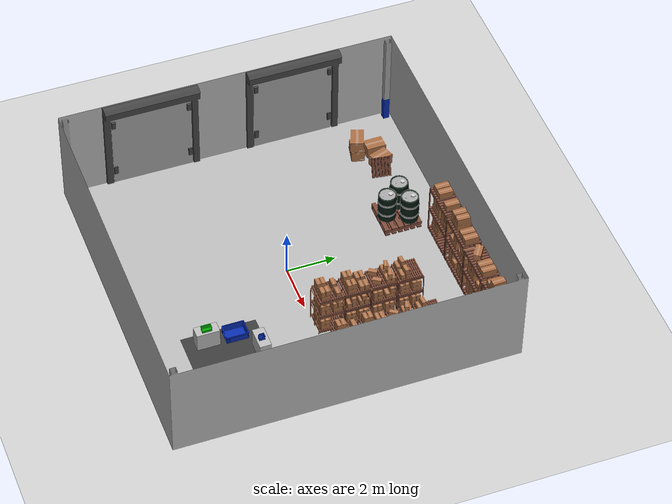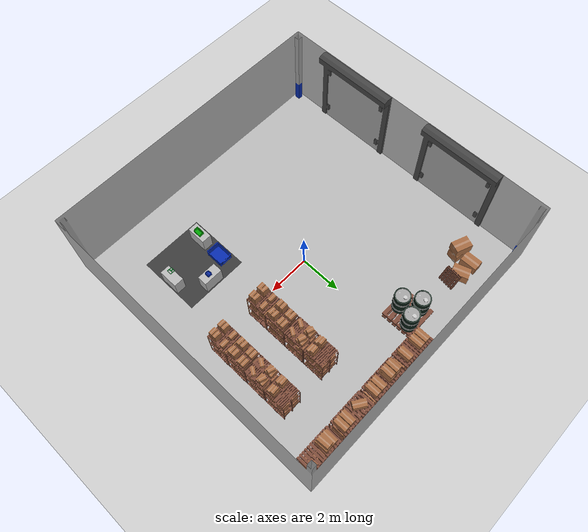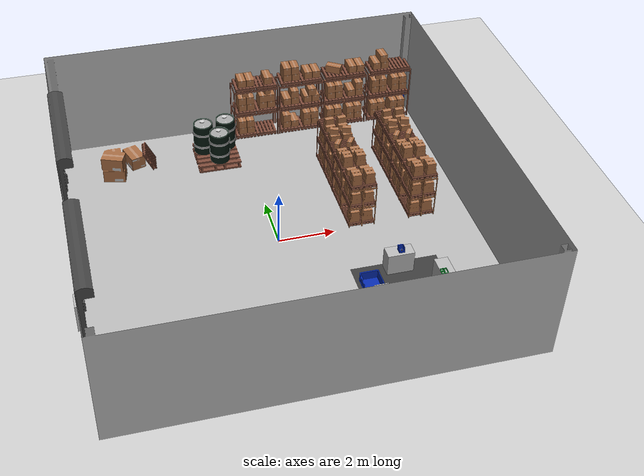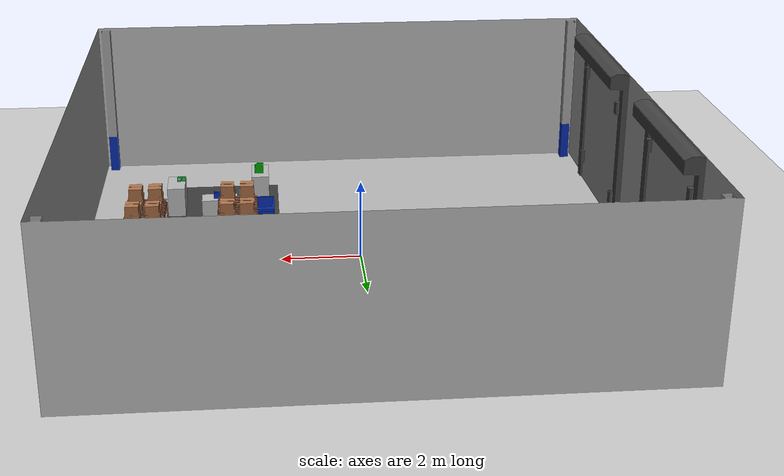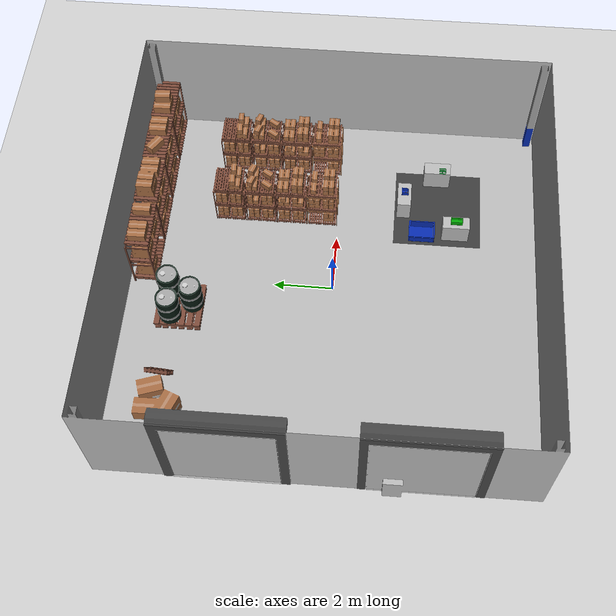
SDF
<sdf version="1.4">
 <world name="default">
  <include><uri>model://ground_plane</uri></include>
  <include>
   <uri>model://fetchit_warehouse</uri>
   <name>fetchit_warehouse</name>
   <pose>0 0 -0.005 0 0 0</pose>
  </include>
  <include>
   <uri>model://caddy_green</uri>
   <name>caddy_green1</name>
   <pose>4.609024 -3.594681 0.814290 0 0 0</pose>
  </include>
  <include>
   <uri>model://gearbox_bolt</uri>
   <name>gearbox_bolt1</name>
   <pose>3.604571 -2.373102 0.81 0 0 0</pose>
  </include>
  <include>
   <uri>model://gearbox_bolt</uri>
   <name>gearbox_bolt2</name>
   <pose>3.609393 -2.302640 0.81 0 0 0</pose>
  </include>
  <include>
   <uri>model://fetchit_table</uri>
   <name>screw_bin_pick_station</name>
   <pose>3.54929 -2.27837 0.0 0 0 0</pose>
  </include>
  <include>
   <uri>model://fetchit_table</uri>
   <name>kit_station</name>
   <pose>4.73491 -3.41284 0.0 0 0 -1.57</pose>
  </include>
  <include>
   <uri>model://fetchit_table</uri>
   <name>gearbox_pick_station</name>
   <pose>2.47048 -4.10962 0.0 0 0 1.57</pose>
  </include>
  <include>
   <uri>model://dropoff_box</uri>
   <name>dropoff_box1</name>
   <pose>2.445290 -2.956990 0.011069 0 0 0</pose>
  </include>
  <include>
   <uri>model://100mmbin</uri>
   <name>100mmbin1</name>
   <pose>2.497005 -4.123425 0.801 0 0 1.57</pose>
  </include>
  <include><uri>model://50mmbin</uri><name>50mmbin</name><pose>3.597790 -2.3 0.801 0 0 0</pose></include>
  <light name="user_point_light_0" type="point">
   <pose>5.3 -3.3 4.0 0 0 0</pose>
   <diffuse>0.2 0.2 0.2 1</diffuse>
   <specular>0.1 0.1 0.1 1</specular>
   <attenuation>
    <range>10</range>
    <constant>0.5</constant>
    <linear>0.01</linear>
    <quadratic>0.001</quadratic>
   </attenuation>
   <cast_shadows>0</cast_shadows>
   <direction>0 0 -1</direction>
  </light>
  <light name="user_point_light_1" type="point">
   <pose>2.0 -3.3 4.0 0 0 0</pose>
   <diffuse>0.2 0.2 0.2 1</diffuse>
   <specular>0.1 0.1 0.1 1</specular>
   <attenuation>
    <range>10</range>
    <constant>0.5</constant>
    <linear>0.01</linear>
    <quadratic>0.001</quadratic>
   </attenuation>
   <cast_shadows>0</cast_shadows>
   <direction>0 0 -1</direction>
  </light>
  <light name="user_point_light_2" type="point">
   <pose>-2.0 -3.3 4.0 0 0 0</pose>
   <diffuse>0.2 0.2 0.2 1</diffuse>
   <specular>0.1 0.1 0.1 1</specular>
   <attenuation>
    <range>10</range>
    <constant>0.5</constant>
    <linear>0.01</linear>
    <quadratic>0.001</quadratic>
   </attenuation>
   <cast_shadows>0</cast_shadows>
   <direction>0 0 -1</direction>
  </light>
  <light name="user_point_light_3" type="point">
   <pose>-5.3 -3.3 4.0 0 -0 0</pose>
   <diffuse>0.2 0.2 0.2 1</diffuse>
   <specular>0.1 0.1 0.1 1</specular>
   <attenuation>
    <range>10.0</range>
    <constant>0.5</constant>
    <linear>0.01</linear>
    <quadratic>0.001</quadratic>
   </attenuation>
   <cast_shadows>0</cast_shadows>
   <direction>0 0 -1</direction>
  </light>
  <light name="user_point_light_4" type="point">
   <pose>5.3 3.3 4.0 0 0 0</pose>
   <diffuse>0.2 0.2 0.2 1</diffuse>
   <specular>0.1 0.1 0.1 1</specular>
   <attenuation>
    <range>10.0</range>
    <constant>0.5</constant>
    <linear>0.01</linear>
    <quadratic>0.001</quadratic>
   </attenuation>
   <cast_shadows>0</cast_shadows>
   <direction>0 0 -1</direction>
  </light>
  <light name="user_point_light_5" type="point">
   <pose>2.0 3.3 4.0 0 0 0</pose>
   <diffuse>0.2 0.2 0.2 1</diffuse>
   <specular>0.1 0.1 0.1 1</specular>
   <attenuation>
    <range>10</range>
    <constant>0.5</constant>
    <linear>0.01</linear>
    <quadratic>0.001</quadratic>
   </attenuation>
   <cast_shadows>0</cast_shadows>
   <direction>0 0 -1</direction>
  </light>
  <light name="user_point_light_6" type="point">
   <pose>-2.0 3.3 4.0 0 0 0</pose>
   <diffuse>0.2 0.2 0.2 1</diffuse>
   <specular>0.1 0.1 0.1 1</specular>
   <attenuation>
    <range>10</range>
    <constant>0.5</constant>
    <linear>0.01</linear>
    <quadratic>0.001</quadratic>
   </attenuation>
   <cast_shadows>0</cast_shadows>
   <direction>0 0 -1</direction>
  </light>
  <light name="user_point_light_7" type="point">
   <pose>-5.3 3.3 4.0 0 -0 0</pose>
   <diffuse>0.2 0.2 0.2 1</diffuse>
   <specular>0.1 0.1 0.1 1</specular>
   <attenuation>
    <range>10</range>
    <constant>0.5</constant>
    <linear>0.01</linear>
    <quadratic>0.001</quadratic>
   </attenuation>
   <cast_shadows>0</cast_shadows>
   <direction>0 0 -1</direction>
  </light>
 </world>
</sdf>

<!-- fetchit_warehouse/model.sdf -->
<sdf version='1.4'>
  <model name="fetchit_warehouse">
      <static>1</static>
      <link name='link'>
        <visual name='visual'>
          <geometry>
            <mesh>
              <uri>model://fetchit_warehouse/meshes/fetchit_env_version6.dae</uri>
              <scale>1 1 1</scale>
            </mesh>
          </geometry>
        </visual>
        <velocity_decay>
          <linear>0.000000</linear>
          <angular>0.000000</angular>
        </velocity_decay>
        <self_collide>0</self_collide>
        <kinematic>0</kinematic>
        <gravity>1</gravity>
      </link>
  </model>
</sdf>

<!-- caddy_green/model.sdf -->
<sdf version='1.4'>
  <model name="caddy_green">
      <static>0</static>
      <link name='link'>
        <inertial>
          <mass>0.0680389</mass>
          <inertia>
            <ixx>0.00040636575898</ixx>
            <ixy>0.000000</ixy>
            <ixz>0.000000</ixz>
            <iyy>0.00040636575898</iyy>
            <iyz>0.000000</iyz>
            <izz>0.000625974918075</izz>
          </inertia>
        </inertial>
        <collision name='collision'>
          <geometry>
            <mesh>
              <uri>model://caddy_green/meshes/Romanoff_Small_Utility_Caddy_cof.stl</uri>
              <scale>1 1 1</scale>
            </mesh>
          </geometry>
          <surface>
            <friction>
              <ode>
                <mu>1.0</mu>
                <mu2>1.0</mu2>
              </ode>
            </friction>
          </surface>
        </collision>

        <visual name='visual'>
          <geometry>
            <mesh>
              <uri>model://caddy_green/meshes/Romanoff_Small_Utility_Caddy_cof_green.dae</uri>
              <scale>1 1 1</scale>
            </mesh>
          </geometry>
        </visual>
        <velocity_decay>
          <linear>0.000000</linear>
          <angular>0.000000</angular>
        </velocity_decay>
        <self_collide>0</self_collide>
        <kinematic>0</kinematic>
        <gravity>1</gravity>
      </link>
  </model>
</sdf>

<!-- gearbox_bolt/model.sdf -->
<sdf version='1.4'>
  <model name="gearbox_bolt">
      <static>0</static>
      <link name='link'>
        <inertial>
          <pose>0 0 0.030633 0 0 0</pose>
          <mass>0.0592855</mass>
          <inertia>
            <ixx>2.2977502034e-05</ixx>
            <ixy>0.000000</ixy>
            <ixz>0.000000</ixz>
            <iyy>2.29905352792e-05</iyy>
            <iyz>0.000000</iyz>
            <izz>8.87979175473e-06</izz>
          </inertia>
        </inertial>
        <collision name='collision'>
          <geometry>
            <mesh>
              <uri>model://gearbox_bolt/meshes/gear_bolt_simple.stl</uri>
              <scale>1 1 1</scale>
            </mesh>
          </geometry>
          <surface>
            <friction>
              <ode>
                <mu>30.0</mu>
                <mu2>30.0</mu2>
              </ode>
            </friction>
          </surface>
        </collision>
        <visual name='visual'>
          <geometry>
            <mesh>
              <uri>model://gearbox_bolt/meshes/screw_v1.dae</uri>
              <scale>1 1 1</scale>
            </mesh>
          </geometry>
        </visual>
        <velocity_decay>
          <linear>0.000000</linear>
          <angular>0.000000</angular>
        </velocity_decay>
        <self_collide>0</self_collide>
        <kinematic>0</kinematic>
        <gravity>1</gravity>
      </link>
  </model>
</sdf>

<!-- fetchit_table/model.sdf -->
<sdf version='1.4'>
  <model name="fetchit_table">
      <static>1</static>
      <link name='link'>
        <inertial>
          <mass>0.0592855</mass>
          <inertia>
            <ixx>2.31818050784e-05</ixx>
            <ixy>0.000000</ixy>
            <ixz>0.000000</ixz>
            <iyy>2.31851837098e-05</iyy>
            <iyz>0.000000</iyz>
            <izz>8.88944636856e-06</izz>
          </inertia>
        </inertial>
        <collision name='collision'>
          <geometry>
            <mesh>
              <uri>model://fetchit_table/meshes/simple.dae</uri>
              <scale>1 1 1</scale>
            </mesh>
          </geometry>
          <surface>
            <friction>
              <ode>
                <mu>30.0</mu>
                <mu2>30.0</mu2>
              </ode>
            </friction>
          </surface>
        </collision>
        <visual name='visual'>
          <geometry>
            <mesh>
              <uri>model://fetchit_table/meshes/tablefetchit_v2_materials.dae</uri>
              <scale>1 1 1</scale>
            </mesh>
          </geometry>
        </visual>
        <velocity_decay>
          <linear>0.000000</linear>
          <angular>0.000000</angular>
        </velocity_decay>
        <self_collide>0</self_collide>
        <kinematic>0</kinematic>
        <gravity>1</gravity>
      </link>
  </model>
</sdf>

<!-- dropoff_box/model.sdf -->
<sdf version='1.4'>
  <model name="dropoff_box">
      <static>1</static>
      <link name='link'>
        <inertial>
          <mass>1.0</mass>
          <inertia>
            <ixx>0.0755262496948</ixx>
            <ixy>0.000000</ixy>
            <ixz>0.000000</ixz>
            <iyy>0.0441608153271</iyy>
            <iyz>0.000000</iyz>
            <izz>0.1033038684</izz>
          </inertia>
        </inertial>
        <collision name='collision'>
          <geometry>
            <mesh>
              <uri>model://dropoff_box/meshes/box_v1.stl</uri>
              <scale>1 1 1</scale>
            </mesh>
          </geometry>
          <surface>
            <friction>
              <ode>
                <mu>30.0</mu>
                <mu2>30.0</mu2>
              </ode>
            </friction>
            <contact>
              <ode>
                <soft_cfm>0</soft_cfm>
    	          <soft_erp>0.2</soft_erp>
    	          <kp>1e+13</kp>
    	          <kd>1</kd>
    	          <max_vel>0.01</max_vel>
    	          <min_depth>0</min_depth>
              </ode>
            </contact>
          </surface>
        </collision>
        <visual name='visual'>
          <geometry>
            <mesh>
              <uri>model://dropoff_box/meshes/box_v1.dae</uri>
              <scale>1 1 1</scale>
            </mesh>
          </geometry>
        </visual>
        <velocity_decay>
          <linear>0.000000</linear>
          <angular>0.000000</angular>
        </velocity_decay>
        <self_collide>0</self_collide>
        <kinematic>0</kinematic>
        <gravity>1</gravity>
      </link>
  </model>
</sdf>

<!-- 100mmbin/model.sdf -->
<sdf version='1.4'>
  <model name="100mmbin">
      <static>1</static>
      <link name='link'>
        <inertial>
          <mass>0.0189132</mass>
          <inertia>
            <ixx>3.36060179959e-06</ixx>
            <ixy>0.000000</ixy>
            <ixz>0.000000</ixz>
            <iyy>3.36060179959e-06</iyy>
            <iyz>0.000000</iyz>
            <izz>1.34975977923e-06</izz>
          </inertia>
        </inertial>
        <collision name='collision'>
          <geometry>
            <mesh>
              <uri>model://100mmbin/meshes/100mm.stl</uri>
              <scale>1 1 1</scale>
            </mesh>
          </geometry>
          <surface>
            <friction>
              <ode>
                <mu>30.0</mu>
                <mu2>30.0</mu2>
              </ode>
            </friction>
          </surface>
        </collision>
        <visual name='visual'>
          <geometry>
            <mesh>
              <uri>model://100mmbin/meshes/100mm.dae</uri>
              <scale>1 1 1</scale>
            </mesh>
          </geometry>
        </visual>
        <velocity_decay>
          <linear>0.000000</linear>
          <angular>0.000000</angular>
        </velocity_decay>
        <self_collide>0</self_collide>
        <kinematic>0</kinematic>
        <gravity>1</gravity>
      </link>
  </model>
</sdf>

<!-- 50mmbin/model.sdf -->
<sdf version='1.4'>
  <model name="50mmbin">
      <static>1</static>
      <link name='link'>
        <inertial>
          <mass>0.0189132</mass>
          <inertia>
            <ixx>3.36060179959e-06</ixx>
            <ixy>0.000000</ixy>
            <ixz>0.000000</ixz>
            <iyy>3.36060179959e-06</iyy>
            <iyz>0.000000</iyz>
            <izz>1.34975977923e-06</izz>
          </inertia>
        </inertial>
        <collision name='collision'>
          <geometry>
            <mesh>
              <uri>model://50mmbin/meshes/50mm.stl</uri>
              <scale>1 1 1</scale>
            </mesh>
          </geometry>
          <surface>
            <friction>
              <ode>
                <mu>30.0</mu>
                <mu2>30.0</mu2>
              </ode>
            </friction>
          </surface>
        </collision>
        <visual name='visual'>
          <geometry>
            <mesh>
              <uri>model://50mmbin/meshes/50mm.dae</uri>
              <scale>1 1 1</scale>
            </mesh>
          </geometry>
        </visual>
        <velocity_decay>
          <linear>0.000000</linear>
          <angular>0.000000</angular>
        </velocity_decay>
        <self_collide>0</self_collide>
        <kinematic>0</kinematic>
        <gravity>1</gravity>
      </link>
  </model>
</sdf>
